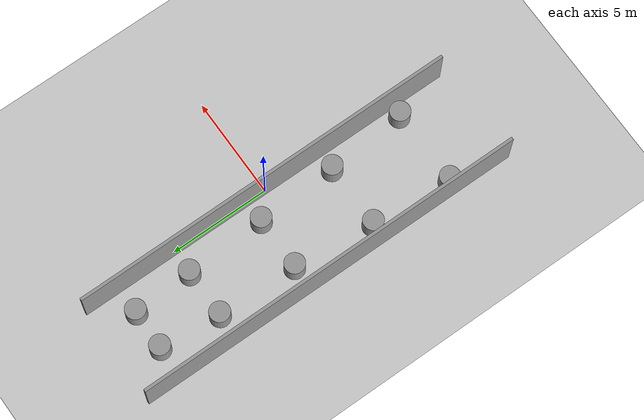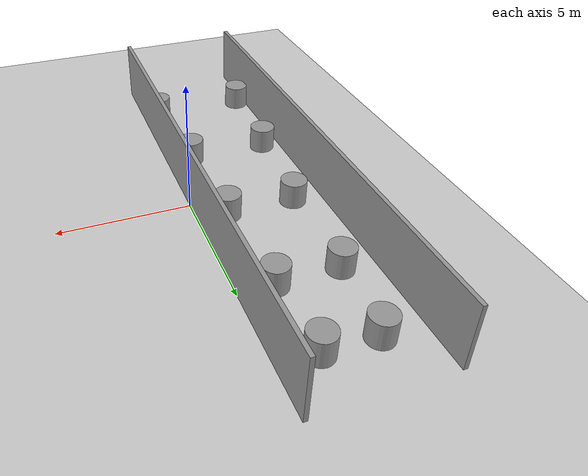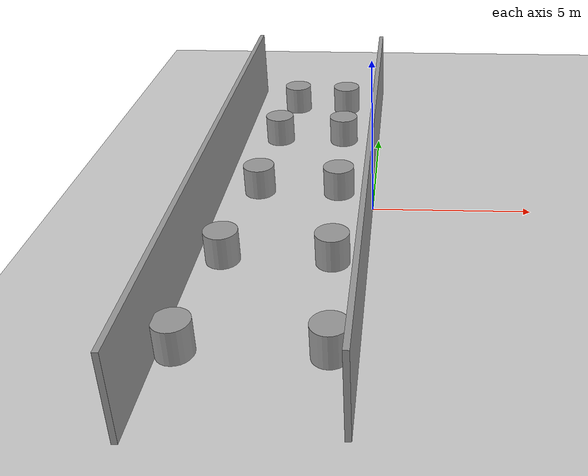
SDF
<sdf version="1.6">
 <world name="default">
  <light name="sun" type="directional">
   <pose>0 0 10 0 -0 0</pose>
   <diffuse>0.8 0.8 0.8 1</diffuse>
   <specular>0.2 0.2 0.2 1</specular>
   <attenuation>
    <range>1000</range>
    <constant>0.9</constant>
    <linear>0.01</linear>
    <quadratic>0.001</quadratic>
   </attenuation>
   <direction>-0.5 0.1 -0.9</direction>
  </light>
  <model name="ground_plane">
   <static>1</static>
   <link name="link">
    <collision name="collision">
     <geometry><plane><normal>0 0 1</normal><size>100 100</size></plane></geometry>
     <surface>
      <contact><collide_bitmask>65535</collide_bitmask></contact>
      <friction><ode><mu>100</mu><mu2>50</mu2></ode></friction>
     </surface>
    </collision>
    <visual name="visual">
     <cast_shadows>0</cast_shadows>
     <geometry><plane><normal>0 0 1</normal><size>100 100</size></plane></geometry>
     <material>
      <script><uri>file://media/materials/scripts/gazebo.material</uri><name>Gazebo/Grey</name></script>
     </material>
    </visual>
   </link>
  </model>
  <gravity>0 0 -9.8</gravity>
  <magnetic_field>6e-06 2.3e-05 -4.2e-05</magnetic_field>
  <atmosphere type="adiabatic"/>
  <physics name="default_physics" default="0" type="ode">
   <max_step_size>0.001</max_step_size>
   <real_time_factor>1</real_time_factor>
   <real_time_update_rate>1000</real_time_update_rate>
  </physics>
  <scene><ambient>0.4 0.4 0.4 1</ambient><background>0.7 0.7 0.7 1</background><shadows>1</shadows></scene>
  <audio><device>default</device></audio>
  <spherical_coordinates>
   <surface_model>EARTH_WGS84</surface_model>
   <latitude_deg>0</latitude_deg>
   <longitude_deg>0</longitude_deg>
   <elevation>0</elevation>
   <heading_deg>0</heading_deg>
  </spherical_coordinates>
  <model name="Sceneraio1">
   <link name="link_0">
    <inertial>
     <mass>1</mass>
     <inertia><ixx>0.145833</ixx><ixy>0</ixy><ixz>0</ixz><iyy>0.145833</iyy><iyz>0</iyz><izz>0.125</izz></inertia>
    </inertial>
    <pose>-1.99116 -7.81312 0 0 -0 0</pose>
    <visual name="visual">
     <geometry><cylinder><radius>0.5</radius><length>1</length></cylinder></geometry>
     <material>
      <lighting>1</lighting>
      <script><uri>file://media/materials/scripts/gazebo.material</uri><name>Gazebo/Grey</name></script>
     </material>
    </visual>
    <collision name="collision">
     <geometry><cylinder><radius>0.5</radius><length>1</length></cylinder></geometry>
     <surface>
      <friction>
       <ode><mu>1</mu><mu2>1</mu2><fdir1>0 0 0</fdir1><slip1>0</slip1><slip2>0</slip2></ode>
       <torsional>
        <coefficient>1</coefficient>
        <patch_radius>0</patch_radius>
        <surface_radius>0</surface_radius>
        <use_patch_radius>1</use_patch_radius>
        <ode><slip>0</slip></ode>
       </torsional>
      </friction>
      <bounce><restitution_coefficient>0</restitution_coefficient><threshold>1e+06</threshold></bounce>
      <contact>
       <collide_without_contact>0</collide_without_contact>
       <collide_without_contact_bitmask>1</collide_without_contact_bitmask>
       <collide_bitmask>1</collide_bitmask>
       <ode>
        <soft_cfm>0</soft_cfm>
        <soft_erp>0.2</soft_erp>
        <kp>1e+13</kp>
        <kd>1</kd>
        <max_vel>0.01</max_vel>
        <min_depth>0</min_depth>
       </ode>
       <bullet>
        <split_impulse>1</split_impulse>
        <split_impulse_penetration_threshold>-0.01</split_impulse_penetration_threshold>
        <soft_cfm>0</soft_cfm>
        <soft_erp>0.2</soft_erp>
        <kp>1e+13</kp>
        <kd>1</kd>
       </bullet>
      </contact>
     </surface>
    </collision>
   </link>
   <link name="link_1">
    <inertial>
     <mass>1</mass>
     <inertia><ixx>0.145833</ixx><ixy>0</ixy><ixz>0</ixz><iyy>0.145833</iyy><iyz>0</iyz><izz>0.125</izz></inertia>
    </inertial>
    <pose>1.80048 -7.80162 0 0 -0 0</pose>
    <visual name="visual">
     <geometry><cylinder><radius>0.5</radius><length>1</length></cylinder></geometry>
     <material>
      <lighting>1</lighting>
      <script><uri>file://media/materials/scripts/gazebo.material</uri><name>Gazebo/Grey</name></script>
     </material>
    </visual>
    <collision name="collision">
     <geometry><cylinder><radius>0.5</radius><length>1</length></cylinder></geometry>
     <surface>
      <friction>
       <ode><mu>1</mu><mu2>1</mu2><fdir1>0 0 0</fdir1><slip1>0</slip1><slip2>0</slip2></ode>
       <torsional>
        <coefficient>1</coefficient>
        <patch_radius>0</patch_radius>
        <surface_radius>0</surface_radius>
        <use_patch_radius>1</use_patch_radius>
        <ode><slip>0</slip></ode>
       </torsional>
      </friction>
      <bounce><restitution_coefficient>0</restitution_coefficient><threshold>1e+06</threshold></bounce>
      <contact>
       <collide_without_contact>0</collide_without_contact>
       <collide_without_contact_bitmask>1</collide_without_contact_bitmask>
       <collide_bitmask>1</collide_bitmask>
       <ode>
        <soft_cfm>0</soft_cfm>
        <soft_erp>0.2</soft_erp>
        <kp>1e+13</kp>
        <kd>1</kd>
        <max_vel>0.01</max_vel>
        <min_depth>0</min_depth>
       </ode>
       <bullet>
        <split_impulse>1</split_impulse>
        <split_impulse_penetration_threshold>-0.01</split_impulse_penetration_threshold>
        <soft_cfm>0</soft_cfm>
        <soft_erp>0.2</soft_erp>
        <kp>1e+13</kp>
        <kd>1</kd>
       </bullet>
      </contact>
     </surface>
    </collision>
   </link>
   <link name="link_2">
    <inertial>
     <mass>1</mass>
     <inertia><ixx>0.145833</ixx><ixy>0</ixy><ixz>0</ixz><iyy>0.145833</iyy><iyz>0</iyz><izz>0.125</izz></inertia>
    </inertial>
    <pose>-1.66678 -3.79239 0 0 -0 0</pose>
    <visual name="visual">
     <geometry><cylinder><radius>0.5</radius><length>1</length></cylinder></geometry>
     <material>
      <lighting>1</lighting>
      <script><uri>file://media/materials/scripts/gazebo.material</uri><name>Gazebo/Grey</name></script>
     </material>
    </visual>
    <collision name="collision">
     <geometry><cylinder><radius>0.5</radius><length>1</length></cylinder></geometry>
     <surface>
      <friction>
       <ode><mu>1</mu><mu2>1</mu2><fdir1>0 0 0</fdir1><slip1>0</slip1><slip2>0</slip2></ode>
       <torsional>
        <coefficient>1</coefficient>
        <patch_radius>0</patch_radius>
        <surface_radius>0</surface_radius>
        <use_patch_radius>1</use_patch_radius>
        <ode><slip>0</slip></ode>
       </torsional>
      </friction>
      <bounce><restitution_coefficient>0</restitution_coefficient><threshold>1e+06</threshold></bounce>
      <contact>
       <collide_without_contact>0</collide_without_contact>
       <collide_without_contact_bitmask>1</collide_without_contact_bitmask>
       <collide_bitmask>1</collide_bitmask>
       <ode>
        <soft_cfm>0</soft_cfm>
        <soft_erp>0.2</soft_erp>
        <kp>1e+13</kp>
        <kd>1</kd>
        <max_vel>0.01</max_vel>
        <min_depth>0</min_depth>
       </ode>
       <bullet>
        <split_impulse>1</split_impulse>
        <split_impulse_penetration_threshold>-0.01</split_impulse_penetration_threshold>
        <soft_cfm>0</soft_cfm>
        <soft_erp>0.2</soft_erp>
        <kp>1e+13</kp>
        <kd>1</kd>
       </bullet>
      </contact>
     </surface>
    </collision>
   </link>
   <link name="link_3">
    <inertial>
     <mass>1</mass>
     <inertia><ixx>0.145833</ixx><ixy>0</ixy><ixz>0</ixz><iyy>0.145833</iyy><iyz>0</iyz><izz>0.125</izz></inertia>
    </inertial>
    <pose>1.49858 -3.80667 0 0 -0 0</pose>
    <visual name="visual">
     <geometry><cylinder><radius>0.5</radius><length>1</length></cylinder></geometry>
     <material>
      <lighting>1</lighting>
      <script><uri>file://media/materials/scripts/gazebo.material</uri><name>Gazebo/Grey</name></script>
     </material>
    </visual>
    <collision name="collision">
     <geometry><cylinder><radius>0.5</radius><length>1</length></cylinder></geometry>
     <surface>
      <friction>
       <ode><mu>1</mu><mu2>1</mu2><fdir1>0 0 0</fdir1><slip1>0</slip1><slip2>0</slip2></ode>
       <torsional>
        <coefficient>1</coefficient>
        <patch_radius>0</patch_radius>
        <surface_radius>0</surface_radius>
        <use_patch_radius>1</use_patch_radius>
        <ode><slip>0</slip></ode>
       </torsional>
      </friction>
      <bounce><restitution_coefficient>0</restitution_coefficient><threshold>1e+06</threshold></bounce>
      <contact>
       <collide_without_contact>0</collide_without_contact>
       <collide_without_contact_bitmask>1</collide_without_contact_bitmask>
       <collide_bitmask>1</collide_bitmask>
       <ode>
        <soft_cfm>0</soft_cfm>
        <soft_erp>0.2</soft_erp>
        <kp>1e+13</kp>
        <kd>1</kd>
        <max_vel>0.01</max_vel>
        <min_depth>0</min_depth>
       </ode>
       <bullet>
        <split_impulse>1</split_impulse>
        <split_impulse_penetration_threshold>-0.01</split_impulse_penetration_threshold>
        <soft_cfm>0</soft_cfm>
        <soft_erp>0.2</soft_erp>
        <kp>1e+13</kp>
        <kd>1</kd>
       </bullet>
      </contact>
     </surface>
    </collision>
   </link>
   <link name="link_4">
    <inertial>
     <mass>1</mass>
     <inertia><ixx>0.145833</ixx><ixy>0</ixy><ixz>0</ixz><iyy>0.145833</iyy><iyz>0</iyz><izz>0.125</izz></inertia>
    </inertial>
    <pose>-1.26541 0.227476 0 0 -0 0</pose>
    <visual name="visual">
     <geometry><cylinder><radius>0.5</radius><length>1</length></cylinder></geometry>
     <material>
      <lighting>1</lighting>
      <script><uri>file://media/materials/scripts/gazebo.material</uri><name>Gazebo/Grey</name></script>
     </material>
    </visual>
    <collision name="collision">
     <geometry><cylinder><radius>0.5</radius><length>1</length></cylinder></geometry>
     <surface>
      <friction>
       <ode><mu>1</mu><mu2>1</mu2><fdir1>0 0 0</fdir1><slip1>0</slip1><slip2>0</slip2></ode>
       <torsional>
        <coefficient>1</coefficient>
        <patch_radius>0</patch_radius>
        <surface_radius>0</surface_radius>
        <use_patch_radius>1</use_patch_radius>
        <ode><slip>0</slip></ode>
       </torsional>
      </friction>
      <bounce><restitution_coefficient>0</restitution_coefficient><threshold>1e+06</threshold></bounce>
      <contact>
       <collide_without_contact>0</collide_without_contact>
       <collide_without_contact_bitmask>1</collide_without_contact_bitmask>
       <collide_bitmask>1</collide_bitmask>
       <ode>
        <soft_cfm>0</soft_cfm>
        <soft_erp>0.2</soft_erp>
        <kp>1e+13</kp>
        <kd>1</kd>
        <max_vel>0.01</max_vel>
        <min_depth>0</min_depth>
       </ode>
       <bullet>
        <split_impulse>1</split_impulse>
        <split_impulse_penetration_threshold>-0.01</split_impulse_penetration_threshold>
        <soft_cfm>0</soft_cfm>
        <soft_erp>0.2</soft_erp>
        <kp>1e+13</kp>
        <kd>1</kd>
       </bullet>
      </contact>
     </surface>
    </collision>
   </link>
   <link name="link_5">
    <inertial>
     <mass>1</mass>
     <inertia><ixx>0.145833</ixx><ixy>0</ixy><ixz>0</ixz><iyy>0.145833</iyy><iyz>0</iyz><izz>0.125</izz></inertia>
    </inertial>
    <pose>1.34907 0.212107 0 0 -0 0</pose>
    <visual name="visual">
     <geometry><cylinder><radius>0.5</radius><length>1</length></cylinder></geometry>
     <material>
      <lighting>1</lighting>
      <script><uri>file://media/materials/scripts/gazebo.material</uri><name>Gazebo/Grey</name></script>
     </material>
    </visual>
    <collision name="collision">
     <geometry><cylinder><radius>0.5</radius><length>1</length></cylinder></geometry>
     <surface>
      <friction>
       <ode><mu>1</mu><mu2>1</mu2><fdir1>0 0 0</fdir1><slip1>0</slip1><slip2>0</slip2></ode>
       <torsional>
        <coefficient>1</coefficient>
        <patch_radius>0</patch_radius>
        <surface_radius>0</surface_radius>
        <use_patch_radius>1</use_patch_radius>
        <ode><slip>0</slip></ode>
       </torsional>
      </friction>
      <bounce><restitution_coefficient>0</restitution_coefficient><threshold>1e+06</threshold></bounce>
      <contact>
       <collide_without_contact>0</collide_without_contact>
       <collide_without_contact_bitmask>1</collide_without_contact_bitmask>
       <collide_bitmask>1</collide_bitmask>
       <ode>
        <soft_cfm>0</soft_cfm>
        <soft_erp>0.2</soft_erp>
        <kp>1e+13</kp>
        <kd>1</kd>
        <max_vel>0.01</max_vel>
        <min_depth>0</min_depth>
       </ode>
       <bullet>
        <split_impulse>1</split_impulse>
        <split_impulse_penetration_threshold>-0.01</split_impulse_penetration_threshold>
        <soft_cfm>0</soft_cfm>
        <soft_erp>0.2</soft_erp>
        <kp>1e+13</kp>
        <kd>1</kd>
       </bullet>
      </contact>
     </surface>
    </collision>
   </link>
   <link name="link_6">
    <inertial>
     <mass>1</mass>
     <inertia><ixx>0.145833</ixx><ixy>0</ixy><ixz>0</ixz><iyy>0.145833</iyy><iyz>0</iyz><izz>0.125</izz></inertia>
    </inertial>
    <pose>-1.15914 4.20219 0 0 -0 0</pose>
    <visual name="visual">
     <geometry><cylinder><radius>0.5</radius><length>1</length></cylinder></geometry>
     <material>
      <lighting>1</lighting>
      <script><uri>file://media/materials/scripts/gazebo.material</uri><name>Gazebo/Grey</name></script>
     </material>
    </visual>
    <collision name="collision">
     <geometry><cylinder><radius>0.5</radius><length>1</length></cylinder></geometry>
     <surface>
      <friction>
       <ode><mu>1</mu><mu2>1</mu2><fdir1>0 0 0</fdir1><slip1>0</slip1><slip2>0</slip2></ode>
       <torsional>
        <coefficient>1</coefficient>
        <patch_radius>0</patch_radius>
        <surface_radius>0</surface_radius>
        <use_patch_radius>1</use_patch_radius>
        <ode><slip>0</slip></ode>
       </torsional>
      </friction>
      <bounce><restitution_coefficient>0</restitution_coefficient><threshold>1e+06</threshold></bounce>
      <contact>
       <collide_without_contact>0</collide_without_contact>
       <collide_without_contact_bitmask>1</collide_without_contact_bitmask>
       <collide_bitmask>1</collide_bitmask>
       <ode>
        <soft_cfm>0</soft_cfm>
        <soft_erp>0.2</soft_erp>
        <kp>1e+13</kp>
        <kd>1</kd>
        <max_vel>0.01</max_vel>
        <min_depth>0</min_depth>
       </ode>
       <bullet>
        <split_impulse>1</split_impulse>
        <split_impulse_penetration_threshold>-0.01</split_impulse_penetration_threshold>
        <soft_cfm>0</soft_cfm>
        <soft_erp>0.2</soft_erp>
        <kp>1e+13</kp>
        <kd>1</kd>
       </bullet>
      </contact>
     </surface>
    </collision>
   </link>
   <link name="link_7">
    <inertial>
     <mass>1</mass>
     <inertia><ixx>0.145833</ixx><ixy>0</ixy><ixz>0</ixz><iyy>0.145833</iyy><iyz>0</iyz><izz>0.125</izz></inertia>
    </inertial>
    <pose>1.20245 4.20805 0 0 -0 0</pose>
    <visual name="visual">
     <geometry><cylinder><radius>0.5</radius><length>1</length></cylinder></geometry>
     <material>
      <lighting>1</lighting>
      <script><uri>file://media/materials/scripts/gazebo.material</uri><name>Gazebo/Grey</name></script>
     </material>
    </visual>
    <collision name="collision">
     <geometry><cylinder><radius>0.5</radius><length>1</length></cylinder></geometry>
     <surface>
      <friction>
       <ode><mu>1</mu><mu2>1</mu2><fdir1>0 0 0</fdir1><slip1>0</slip1><slip2>0</slip2></ode>
       <torsional>
        <coefficient>1</coefficient>
        <patch_radius>0</patch_radius>
        <surface_radius>0</surface_radius>
        <use_patch_radius>1</use_patch_radius>
        <ode><slip>0</slip></ode>
       </torsional>
      </friction>
      <bounce><restitution_coefficient>0</restitution_coefficient><threshold>1e+06</threshold></bounce>
      <contact>
       <collide_without_contact>0</collide_without_contact>
       <collide_without_contact_bitmask>1</collide_without_contact_bitmask>
       <collide_bitmask>1</collide_bitmask>
       <ode>
        <soft_cfm>0</soft_cfm>
        <soft_erp>0.2</soft_erp>
        <kp>1e+13</kp>
        <kd>1</kd>
        <max_vel>0.01</max_vel>
        <min_depth>0</min_depth>
       </ode>
       <bullet>
        <split_impulse>1</split_impulse>
        <split_impulse_penetration_threshold>-0.01</split_impulse_penetration_threshold>
        <soft_cfm>0</soft_cfm>
        <soft_erp>0.2</soft_erp>
        <kp>1e+13</kp>
        <kd>1</kd>
       </bullet>
      </contact>
     </surface>
    </collision>
   </link>
   <link name="link_8">
    <inertial>
     <mass>1</mass>
     <inertia><ixx>0.145833</ixx><ixy>0</ixy><ixz>0</ixz><iyy>0.145833</iyy><iyz>0</iyz><izz>0.125</izz></inertia>
    </inertial>
    <pose>-0.859654 7.20004 0 0 -0 0</pose>
    <visual name="visual">
     <geometry><cylinder><radius>0.5</radius><length>1</length></cylinder></geometry>
     <material>
      <lighting>1</lighting>
      <script><uri>file://media/materials/scripts/gazebo.material</uri><name>Gazebo/Grey</name></script>
     </material>
    </visual>
    <collision name="collision">
     <geometry><cylinder><radius>0.5</radius><length>1</length></cylinder></geometry>
     <surface>
      <friction>
       <ode><mu>1</mu><mu2>1</mu2><fdir1>0 0 0</fdir1><slip1>0</slip1><slip2>0</slip2></ode>
       <torsional>
        <coefficient>1</coefficient>
        <patch_radius>0</patch_radius>
        <surface_radius>0</surface_radius>
        <use_patch_radius>1</use_patch_radius>
        <ode><slip>0</slip></ode>
       </torsional>
      </friction>
      <bounce><restitution_coefficient>0</restitution_coefficient><threshold>1e+06</threshold></bounce>
      <contact>
       <collide_without_contact>0</collide_without_contact>
       <collide_without_contact_bitmask>1</collide_without_contact_bitmask>
       <collide_bitmask>1</collide_bitmask>
       <ode>
        <soft_cfm>0</soft_cfm>
        <soft_erp>0.2</soft_erp>
        <kp>1e+13</kp>
        <kd>1</kd>
        <max_vel>0.01</max_vel>
        <min_depth>0</min_depth>
       </ode>
       <bullet>
        <split_impulse>1</split_impulse>
        <split_impulse_penetration_threshold>-0.01</split_impulse_penetration_threshold>
        <soft_cfm>0</soft_cfm>
        <soft_erp>0.2</soft_erp>
        <kp>1e+13</kp>
        <kd>1</kd>
       </bullet>
      </contact>
     </surface>
    </collision>
   </link>
   <link name="link_9">
    <inertial>
     <mass>1</mass>
     <inertia><ixx>0.145833</ixx><ixy>0</ixy><ixz>0</ixz><iyy>0.145833</iyy><iyz>0</iyz><izz>0.125</izz></inertia>
    </inertial>
    <pose>1.09154 7.16392 0 0 -0 0</pose>
    <visual name="visual">
     <geometry><cylinder><radius>0.5</radius><length>1</length></cylinder></geometry>
     <material>
      <lighting>1</lighting>
      <script><uri>file://media/materials/scripts/gazebo.material</uri><name>Gazebo/Grey</name></script>
     </material>
    </visual>
    <collision name="collision">
     <geometry><cylinder><radius>0.5</radius><length>1</length></cylinder></geometry>
     <surface>
      <friction>
       <ode><mu>1</mu><mu2>1</mu2><fdir1>0 0 0</fdir1><slip1>0</slip1><slip2>0</slip2></ode>
       <torsional>
        <coefficient>1</coefficient>
        <patch_radius>0</patch_radius>
        <surface_radius>0</surface_radius>
        <use_patch_radius>1</use_patch_radius>
        <ode><slip>0</slip></ode>
       </torsional>
      </friction>
      <bounce><restitution_coefficient>0</restitution_coefficient><threshold>1e+06</threshold></bounce>
      <contact>
       <collide_without_contact>0</collide_without_contact>
       <collide_without_contact_bitmask>1</collide_without_contact_bitmask>
       <collide_bitmask>1</collide_bitmask>
       <ode>
        <soft_cfm>0</soft_cfm>
        <soft_erp>0.2</soft_erp>
        <kp>1e+13</kp>
        <kd>1</kd>
        <max_vel>0.01</max_vel>
        <min_depth>0</min_depth>
       </ode>
       <bullet>
        <split_impulse>1</split_impulse>
        <split_impulse_penetration_threshold>-0.01</split_impulse_penetration_threshold>
        <soft_cfm>0</soft_cfm>
        <soft_erp>0.2</soft_erp>
        <kp>1e+13</kp>
        <kd>1</kd>
       </bullet>
      </contact>
     </surface>
    </collision>
   </link>
   <static>0</static>
   <pose>-2.50444 0.793872 0.5 0 -0 0</pose>
  </model>
  <model name="Scenario1">
   <pose>-2.54602 -0.076125 0 0 -0 0</pose>
   <link name="Wall_12">
    <collision name="Wall_12_Collision">
     <geometry><box><size>19.75 0.15 2.5</size></box></geometry>
     <pose>0 0 1.25 0 -0 0</pose>
    </collision>
    <visual name="Wall_12_Visual">
     <pose>0 0 1.25 0 -0 0</pose>
     <geometry><box><size>19.75 0.15 2.5</size></box></geometry>
     <material>
      <script><uri>file://media/materials/scripts/gazebo.material</uri><name>Gazebo/Grey</name></script>
      <ambient>1 1 1 1</ambient>
     </material>
     <meta><layer>0</layer></meta>
    </visual>
    <pose>-2.46843 0 0 0 -0 1.5708</pose>
   </link>
   <link name="Wall_20">
    <collision name="Wall_20_Collision">
     <geometry><box><size>19.5 0.15 2.5</size></box></geometry>
     <pose>0 0 1.25 0 -0 0</pose>
    </collision>
    <visual name="Wall_20_Visual">
     <pose>0 0 1.25 0 -0 0</pose>
     <geometry><box><size>19.5 0.15 2.5</size></box></geometry>
     <material>
      <script><uri>file://media/materials/scripts/gazebo.material</uri><name>Gazebo/Grey</name></script>
      <ambient>1 1 1 1</ambient>
     </material>
     <meta><layer>0</layer></meta>
    </visual>
    <pose>2.46843 0.117484 0 0 -0 1.5708</pose>
   </link>
   <static>1</static>
  </model>
 </world>
</sdf>
